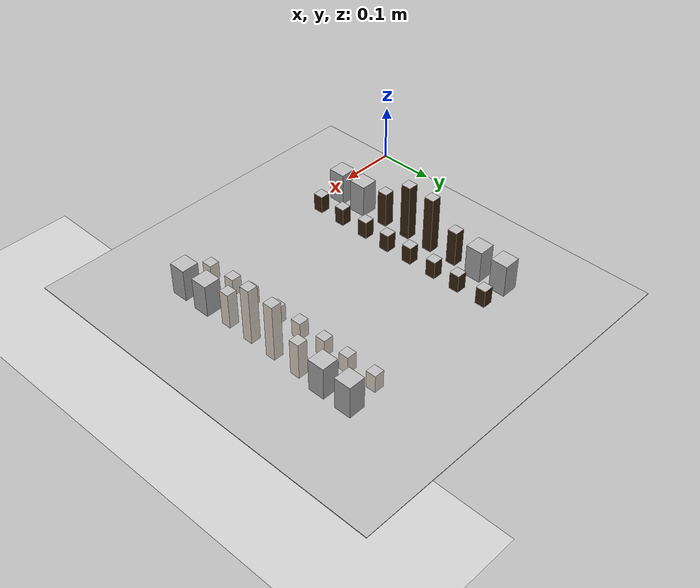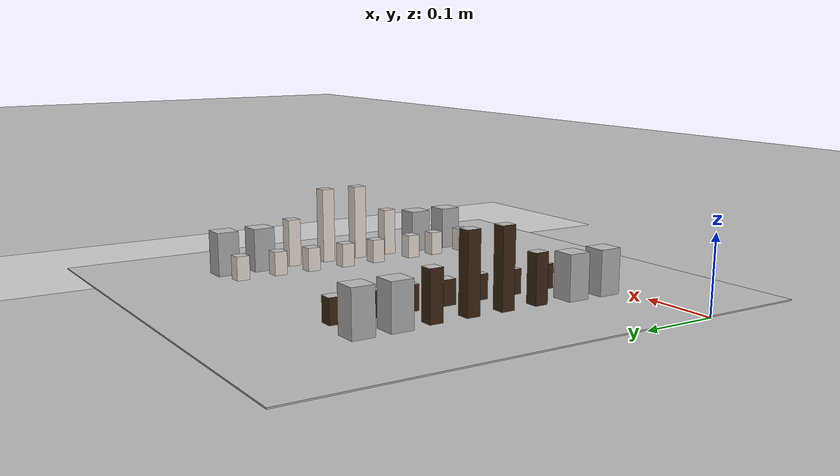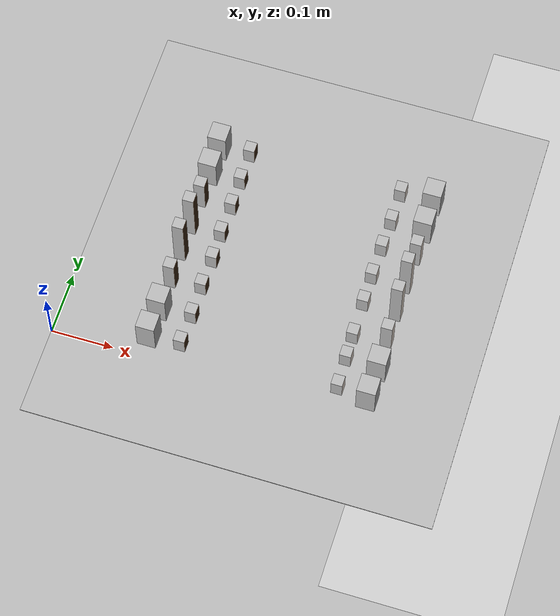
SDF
<sdf version="1.6">
 <world name="default">
  <light name="sun" type="directional">
   <pose>0 0 10 0 -0 0</pose>
   <diffuse>0.8 0.8 0.8 1</diffuse>
   <specular>0.2 0.2 0.2 1</specular>
   <attenuation>
    <range>1000</range>
    <constant>0.9</constant>
    <linear>0.01</linear>
    <quadratic>0.001</quadratic>
   </attenuation>
   <direction>-0.5 0.1 -0.9</direction>
  </light>
  <model name="ground_plane">
   <static>1</static>
   <link name="link">
    <collision name="collision">
     <geometry><plane><normal>0 0 1</normal><size>100 100</size></plane></geometry>
     <surface><friction><ode><mu>100</mu><mu2>50</mu2></ode></friction></surface>
    </collision>
    <visual name="visual">
     <cast_shadows>0</cast_shadows>
     <geometry><plane><normal>0 0 1</normal><size>100 100</size></plane></geometry>
     <material>
      <script><uri>file://media/materials/scripts/gazebo.material</uri><name>Gazebo/Grey</name></script>
     </material>
    </visual>
   </link>
  </model>
  <gravity>0 0 -9.8</gravity>
  <magnetic_field>6e-06 2.3e-05 -4.2e-05</magnetic_field>
  <atmosphere type="adiabatic"/>
  <physics name="default_physics" default="0" type="ode">
   <max_step_size>0.001</max_step_size>
   <real_time_factor>1</real_time_factor>
   <real_time_update_rate>1000</real_time_update_rate>
  </physics>
  <scene><ambient>0.4 0.4 0.4 1</ambient><background>0.7 0.7 0.7 1</background><shadows>1</shadows></scene>
  <spherical_coordinates>
   <surface_model>EARTH_WGS84</surface_model>
   <latitude_deg>0</latitude_deg>
   <longitude_deg>0</longitude_deg>
   <elevation>0</elevation>
   <heading_deg>0</heading_deg>
  </spherical_coordinates>
  <model name="flat_chessboard">
   <static>0</static>
   <link name="link">
    <inertial>
     <mass>0.05</mass>
     <inertia><ixx>1.5e-05</ixx><ixy>0</ixy><ixz>0</ixz><iyy>1.5e-05</iyy><iyz>0</iyz><izz>1.08e-05</izz></inertia>
    </inertial>
    <collision name="collision">
     <geometry><box><size>0.7 0.65 0.0039</size></box></geometry>
     <surface>
      <friction><ode><mu>30</mu><mu2>30</mu2><fdir1>0 0 0</fdir1></ode></friction>
      <contact><ode><kp>1e+06</kp><kd>100</kd><min_depth>0.0025</min_depth><max_vel>1</max_vel></ode></contact>
     </surface>
    </collision>
    <visual name="chessboard support"><geometry><box><size>0.7 0.65 0.0039</size></box></geometry></visual>
    <visual name="printed chessboard">
     <pose>0 0 0 0 -0 1.5708</pose>
     <geometry>
      <mesh><uri>model://flat_chessboard/meshes/flat_chessboard.dae</uri><scale>11.88 8.4 0.08</scale></mesh>
     </geometry>
    </visual>
    <velocity_decay><linear>0</linear><angular>0</angular></velocity_decay>
    <kinematic>1</kinematic>
   </link>
   <pose>0.32558 0.207819 -0.000478 -0.003572 2.3e-05 -1.57462</pose>
  </model>
  <model name="queenW">
   <static>0</static>
   <link name="link">
    <inertial>
     <mass>0.05</mass>
     <inertia><ixx>1.5e-05</ixx><ixy>0</ixy><ixz>0</ixz><iyy>1.5e-05</iyy><iyz>0</iyz><izz>1.08e-05</izz></inertia>
    </inertial>
    <collision name="colision">
     <geometry><box><size>0.03 0.03 0.08</size></box></geometry>
     <surface>
      <friction><ode><mu>30</mu><mu2>30</mu2><fdir1>0 0 0</fdir1></ode></friction>
      <contact><ode><kp>1000</kp><kd>100</kd><min_depth>0.001</min_depth><max_vel>0.001</max_vel></ode></contact>
     </surface>
    </collision>
    <visual name="visual1">
     <geometry><mesh><uri>model://queenW/meshes/queenW.dae</uri><scale>0.6 0.6 1.6</scale></mesh></geometry>
    </visual>
    <velocity_decay><linear>0</linear><angular>0</angular></velocity_decay>
   </link>
   <pose>0.501218 0.180881 0.039722 7e-05 0.003671 -0.000688</pose>
  </model>
  <model name="kingW">
   <static>0</static>
   <link name="link">
    <inertial>
     <mass>0.05</mass>
     <inertia><ixx>1.5e-05</ixx><ixy>0</ixy><ixz>0</ixz><iyy>1.5e-05</iyy><iyz>0</iyz><izz>1.08e-05</izz></inertia>
    </inertial>
    <collision name="colision">
     <geometry><box><size>0.03 0.03 0.08</size></box></geometry>
     <surface>
      <friction><ode><mu>30</mu><mu2>30</mu2><fdir1>0 0 0</fdir1></ode></friction>
      <contact><ode><kp>1000</kp><kd>100</kd><min_depth>0.001</min_depth><max_vel>0.001</max_vel></ode></contact>
     </surface>
    </collision>
    <visual name="visual1">
     <geometry><mesh><uri>model://kingW/meshes/kingW.dae</uri><scale>0.6 0.6 1.6</scale></mesh></geometry>
    </visual>
    <velocity_decay><linear>0</linear><angular>0</angular></velocity_decay>
   </link>
   <pose>0.502193 0.231458 0.03972 5.8e-05 0.003662 0</pose>
  </model>
  <model name="knightW1">
   <static>0</static>
   <link name="link">
    <inertial>
     <mass>0.05</mass>
     <inertia><ixx>1.5e-05</ixx><ixy>0</ixy><ixz>0</ixz><iyy>1.5e-05</iyy><iyz>0</iyz><izz>1.08e-05</izz></inertia>
    </inertial>
    <collision name="colision">
     <geometry><box><size>0.03 0.03 0.06</size></box></geometry>
     <surface>
      <friction><ode><mu>30</mu><mu2>30</mu2><fdir1>0 0 0</fdir1></ode></friction>
      <contact><ode><kp>1000</kp><kd>100</kd><min_depth>0.001</min_depth><max_vel>0.001</max_vel></ode></contact>
     </surface>
    </collision>
    <visual name="visual1">
     <geometry><mesh><uri>model://knightW1/meshes/knightW1.dae</uri><scale>0.6 0.6 1.2</scale></mesh></geometry>
    </visual>
    <velocity_decay><linear>0</linear><angular>0</angular></velocity_decay>
   </link>
   <pose>0.500443 0.131834 0.029722 4.1e-05 0.003633 0</pose>
  </model>
  <model name="knightW2">
   <static>0</static>
   <link name="link">
    <inertial>
     <mass>0.05</mass>
     <inertia><ixx>1.5e-05</ixx><ixy>0</ixy><ixz>0</ixz><iyy>1.5e-05</iyy><iyz>0</iyz><izz>1.08e-05</izz></inertia>
    </inertial>
    <collision name="colision">
     <geometry><box><size>0.03 0.03 0.06</size></box></geometry>
     <surface>
      <friction><ode><mu>30</mu><mu2>30</mu2><fdir1>0 0 0</fdir1></ode></friction>
      <contact><ode><kp>1000</kp><kd>100</kd><min_depth>0.001</min_depth><max_vel>0.001</max_vel></ode></contact>
     </surface>
    </collision>
    <visual name="visual1">
     <geometry><mesh><uri>model://knightW2/meshes/knightW2.dae</uri><scale>0.6 0.6 1.2</scale></mesh></geometry>
    </visual>
    <velocity_decay><linear>0</linear><angular>0</angular></velocity_decay>
   </link>
   <pose>0.503465 0.284436 0.029717 4.1e-05 0.003633 0</pose>
  </model>
  <model name="horseW1">
   <static>0</static>
   <link name="link">
    <inertial>
     <mass>0.05</mass>
     <inertia><ixx>1.5e-05</ixx><ixy>0</ixy><ixz>0</ixz><iyy>1.5e-05</iyy><iyz>0</iyz><izz>1.08e-05</izz></inertia>
    </inertial>
    <collision name="colision">
     <geometry><box><size>0.03 0.03 0.06</size></box></geometry>
     <surface>
      <friction><ode><mu>30</mu><mu2>30</mu2><fdir1>0 0 0</fdir1></ode></friction>
      <contact><ode><kp>1000</kp><kd>100</kd><min_depth>0.001</min_depth><max_vel>0.001</max_vel></ode></contact>
     </surface>
    </collision>
    <visual name="visual1">
     <geometry><mesh><uri>model://horseW1/meshes/horseW1.dae</uri><scale>0.6 0.6 1.2</scale></mesh></geometry>
    </visual>
    <velocity_decay><linear>0</linear><angular>0</angular></velocity_decay>
   </link>
   <pose>0.500951 0.081192 0.029719 4.1e-05 0.003633 1e-06</pose>
  </model>
  <model name="horseW2">
   <static>0</static>
   <link name="link">
    <inertial>
     <mass>0.05</mass>
     <inertia><ixx>1.5e-05</ixx><ixy>0</ixy><ixz>0</ixz><iyy>1.5e-05</iyy><iyz>0</iyz><izz>1.08e-05</izz></inertia>
    </inertial>
    <collision name="colision">
     <geometry><box><size>0.03 0.03 0.06</size></box></geometry>
     <surface>
      <friction><ode><mu>30</mu><mu2>30</mu2><fdir1>0 0 0</fdir1></ode></friction>
      <contact><ode><kp>1000</kp><kd>100</kd><min_depth>0.001</min_depth><max_vel>0.001</max_vel></ode></contact>
     </surface>
    </collision>
    <visual name="visual1">
     <geometry><mesh><uri>model://horseW2/meshes/horseW2.dae</uri><scale>0.6 0.6 1.2</scale></mesh></geometry>
    </visual>
    <velocity_decay><linear>0</linear><angular>0</angular></velocity_decay>
   </link>
   <pose>0.502801 0.333377 0.029721 4.1e-05 0.003633 1e-06</pose>
  </model>
  <model name="towerW1">
   <static>0</static>
   <link name="link">
    <inertial>
     <mass>0.05</mass>
     <inertia><ixx>1.5e-05</ixx><ixy>0</ixy><ixz>0</ixz><iyy>1.5e-05</iyy><iyz>0</iyz><izz>1.08e-05</izz></inertia>
    </inertial>
    <collision name="colision">
     <geometry><box><size>0.03 0.03 0.06</size></box></geometry>
     <surface>
      <friction><ode><mu>30</mu><mu2>30</mu2><fdir1>0 0 0</fdir1></ode></friction>
      <contact><ode><kp>1000</kp><kd>100</kd><min_depth>0.001</min_depth><max_vel>0.001</max_vel></ode></contact>
     </surface>
    </collision>
    <visual name="visual1">
     <geometry><mesh><uri>model://towerW1/meshes/towerW1.dae</uri><scale>0.6 0.6 1.2</scale></mesh></geometry>
    </visual>
    <velocity_decay><linear>0</linear><angular>0</angular></velocity_decay>
   </link>
   <pose>0.499592 0.028987 0.029722 3.9e-05 0.00363 1e-06</pose>
  </model>
  <model name="towerW2">
   <static>0</static>
   <link name="link">
    <inertial>
     <mass>0.05</mass>
     <inertia><ixx>1.5e-05</ixx><ixy>0</ixy><ixz>0</ixz><iyy>1.5e-05</iyy><iyz>0</iyz><izz>1.08e-05</izz></inertia>
    </inertial>
    <collision name="colision">
     <geometry><box><size>0.03 0.03 0.06</size></box></geometry>
     <surface>
      <friction><ode><mu>30</mu><mu2>30</mu2><fdir1>0 0 0</fdir1></ode></friction>
      <contact><ode><kp>1000</kp><kd>100</kd><min_depth>0.001</min_depth><max_vel>0.001</max_vel></ode></contact>
     </surface>
    </collision>
    <visual name="visual1">
     <geometry><mesh><uri>model://towerW2/meshes/towerW2.dae</uri><scale>0.6 0.6 1.2</scale></mesh></geometry>
    </visual>
    <velocity_decay><linear>0</linear><angular>0</angular></velocity_decay>
   </link>
   <pose>0.503264 0.385638 0.029722 3.9e-05 0.00363 1e-06</pose>
  </model>
  <model name="pawnW1">
   <static>0</static>
   <link name="link">
    <inertial>
     <mass>0.05</mass>
     <inertia><ixx>1.5e-05</ixx><ixy>0</ixy><ixz>0</ixz><iyy>1.5e-05</iyy><iyz>0</iyz><izz>1.08e-05</izz></inertia>
    </inertial>
    <collision name="colision">
     <geometry><box><size>0.03 0.03 0.04</size></box></geometry>
     <surface>
      <friction><ode><mu>30</mu><mu2>30</mu2><fdir1>0 0 0</fdir1></ode></friction>
      <contact><ode><kp>1000</kp><kd>100</kd><min_depth>0.001</min_depth><max_vel>0.001</max_vel></ode></contact>
     </surface>
    </collision>
    <visual name="visual1">
     <geometry><mesh><uri>model://pawnW1/meshes/pawnW1.dae</uri><scale>0.6 0.6 0.8</scale></mesh></geometry>
    </visual>
    <velocity_decay><linear>0</linear><angular>0</angular></velocity_decay>
   </link>
   <pose>0.451006 0.033199 0.019895 3.9e-05 0.003612 -1e-06</pose>
  </model>
  <model name="pawnW2">
   <static>0</static>
   <link name="link">
    <inertial>
     <mass>0.018</mass>
     <inertia><ixx>1.5e-05</ixx><ixy>0</ixy><ixz>0</ixz><iyy>1.5e-05</iyy><iyz>0</iyz><izz>1.08e-05</izz></inertia>
    </inertial>
    <collision name="colision">
     <geometry><box><size>0.03 0.03 0.04</size></box></geometry>
     <surface>
      <friction><ode><mu>30</mu><mu2>30</mu2><fdir1>0 0 0</fdir1></ode></friction>
      <contact><ode><kp>1000</kp><kd>100</kd><min_depth>0.001</min_depth><max_vel>0.001</max_vel></ode></contact>
     </surface>
    </collision>
    <visual name="visual1">
     <geometry><mesh><uri>model://pawnW2/meshes/pawnW2.dae</uri><scale>0.6 0.6 0.8</scale></mesh></geometry>
    </visual>
    <velocity_decay><linear>0</linear><angular>0</angular></velocity_decay>
   </link>
   <pose>0.449628 0.083276 0.01998 3.7e-05 0.003586 0</pose>
  </model>
  <model name="pawnW3">
   <static>0</static>
   <link name="link">
    <inertial>
     <mass>0.05</mass>
     <inertia><ixx>1.5e-05</ixx><ixy>0</ixy><ixz>0</ixz><iyy>1.5e-05</iyy><iyz>0</iyz><izz>1.08e-05</izz></inertia>
    </inertial>
    <collision name="colision">
     <geometry><box><size>0.03 0.03 0.04</size></box></geometry>
     <surface>
      <friction><ode><mu>30</mu><mu2>30</mu2><fdir1>0 0 0</fdir1></ode></friction>
      <contact><ode><kp>1000</kp><kd>100</kd><min_depth>0.001</min_depth><max_vel>0.001</max_vel></ode></contact>
     </surface>
    </collision>
    <visual name="visual1">
     <geometry><mesh><uri>model://pawnW3/meshes/pawnW3.dae</uri><scale>0.6 0.6 0.8</scale></mesh></geometry>
    </visual>
    <velocity_decay><linear>0</linear><angular>0</angular></velocity_decay>
   </link>
   <pose>0.448812 0.123178 0.019906 4e-05 0.003613 0</pose>
  </model>
  <model name="pawnW4">
   <static>0</static>
   <link name="link">
    <inertial>
     <mass>0.05</mass>
     <inertia><ixx>1.5e-05</ixx><ixy>0</ixy><ixz>0</ixz><iyy>1.5e-05</iyy><iyz>0</iyz><izz>1.08e-05</izz></inertia>
    </inertial>
    <collision name="colision">
     <geometry><box><size>0.03 0.03 0.04</size></box></geometry>
     <surface>
      <friction><ode><mu>30</mu><mu2>30</mu2><fdir1>0 0 0</fdir1></ode></friction>
      <contact><ode><kp>1000</kp><kd>100</kd><min_depth>0.001</min_depth><max_vel>0.001</max_vel></ode></contact>
     </surface>
    </collision>
    <visual name="visual1">
     <geometry><mesh><uri>model://pawnW4/meshes/pawnW4.dae</uri><scale>0.6 0.6 0.8</scale></mesh></geometry>
    </visual>
    <velocity_decay><linear>0</linear><angular>0</angular></velocity_decay>
   </link>
   <pose>0.448292 0.181907 0.01991 4e-05 0.003613 -1e-06</pose>
  </model>
  <model name="pawnW5">
   <static>0</static>
   <link name="link">
    <inertial>
     <mass>0.05</mass>
     <inertia><ixx>1.5e-05</ixx><ixy>0</ixy><ixz>0</ixz><iyy>1.5e-05</iyy><iyz>0</iyz><izz>1.08e-05</izz></inertia>
    </inertial>
    <collision name="colision">
     <geometry><box><size>0.03 0.03 0.04</size></box></geometry>
     <surface>
      <friction><ode><mu>30</mu><mu2>30</mu2><fdir1>0 0 0</fdir1></ode></friction>
      <contact><ode><kp>1000</kp><kd>100</kd><min_depth>0.001</min_depth><max_vel>0.001</max_vel></ode></contact>
     </surface>
    </collision>
    <visual name="visual1">
     <geometry><mesh><uri>model://pawnW5/meshes/pawnW5.dae</uri><scale>0.6 0.6 0.8</scale></mesh></geometry>
    </visual>
    <velocity_decay><linear>0</linear><angular>0</angular></velocity_decay>
   </link>
   <pose>0.447856 0.230775 0.019914 4e-05 0.003613 -1e-06</pose>
  </model>
  <model name="pawnW6">
   <static>0</static>
   <link name="link">
    <inertial>
     <mass>0.05</mass>
     <inertia><ixx>1.5e-05</ixx><ixy>0</ixy><ixz>0</ixz><iyy>1.5e-05</iyy><iyz>0</iyz><izz>1.08e-05</izz></inertia>
    </inertial>
    <collision name="colision">
     <geometry><box><size>0.03 0.03 0.04</size></box></geometry>
     <surface>
      <friction><ode><mu>30</mu><mu2>30</mu2><fdir1>0 0 0</fdir1></ode></friction>
      <contact><ode><kp>1000</kp><kd>100</kd><min_depth>0.001</min_depth><max_vel>0.001</max_vel></ode></contact>
     </surface>
    </collision>
    <visual name="visual1">
     <geometry><mesh><uri>model://pawnW6/meshes/pawnW6.dae</uri><scale>0.6 0.6 0.8</scale></mesh></geometry>
    </visual>
    <velocity_decay><linear>0</linear><angular>0</angular></velocity_decay>
   </link>
   <pose>0.448862 0.282782 0.019912 4e-05 0.003613 -1e-06</pose>
  </model>
  <model name="pawnW7">
   <static>0</static>
   <link name="link">
    <inertial>
     <mass>0.05</mass>
     <inertia><ixx>1.5e-05</ixx><ixy>0</ixy><ixz>0</ixz><iyy>1.5e-05</iyy><iyz>0</iyz><izz>1.08e-05</izz></inertia>
    </inertial>
    <collision name="colision">
     <geometry><box><size>0.03 0.03 0.04</size></box></geometry>
     <surface>
      <friction><ode><mu>30</mu><mu2>30</mu2><fdir1>0 0 0</fdir1></ode></friction>
      <contact><ode><kp>1000</kp><kd>100</kd><min_depth>0.001</min_depth><max_vel>0.001</max_vel></ode></contact>
     </surface>
    </collision>
    <visual name="visual1">
     <geometry><mesh><uri>model://pawnW7/meshes/pawnW7.dae</uri><scale>0.6 0.6 0.8</scale></mesh></geometry>
    </visual>
    <velocity_decay><linear>0</linear><angular>0</angular></velocity_decay>
   </link>
   <pose>0.45054 0.331521 0.019908 4e-05 0.003613 -1e-06</pose>
  </model>
  <model name="pawnW8">
   <static>0</static>
   <link name="link">
    <inertial>
     <mass>0.05</mass>
     <inertia><ixx>1.5e-05</ixx><ixy>0</ixy><ixz>0</ixz><iyy>1.5e-05</iyy><iyz>0</iyz><izz>1.08e-05</izz></inertia>
    </inertial>
    <collision name="colision">
     <geometry><box><size>0.03 0.03 0.04</size></box></geometry>
     <surface>
      <friction><ode><mu>30</mu><mu2>30</mu2><fdir1>0 0 0</fdir1></ode></friction>
      <contact><ode><kp>1000</kp><kd>100</kd><min_depth>0.001</min_depth><max_vel>0.001</max_vel></ode></contact>
     </surface>
    </collision>
    <visual name="visual1">
     <geometry><mesh><uri>model://pawnW8/meshes/pawnW8.dae</uri><scale>0.6 0.6 0.8</scale></mesh></geometry>
    </visual>
    <velocity_decay><linear>0</linear><angular>0</angular></velocity_decay>
   </link>
   <pose>0.45061 0.385643 0.01991 4e-05 0.003613 -1e-06</pose>
  </model>
  <model name="kingB">
   <static>0</static>
   <link name="link">
    <inertial>
     <mass>0.05</mass>
     <inertia><ixx>1.5e-05</ixx><ixy>0</ixy><ixz>0</ixz><iyy>1.5e-05</iyy><iyz>0</iyz><izz>1.08e-05</izz></inertia>
    </inertial>
    <collision name="colision">
     <geometry><box><size>0.03 0.03 0.08</size></box></geometry>
     <surface>
      <friction><ode><mu>30</mu><mu2>30</mu2><fdir1>0 0 0</fdir1></ode></friction>
      <contact><ode><kp>1000</kp><kd>100</kd><min_depth>0.001</min_depth><max_vel>0.001</max_vel></ode></contact>
     </surface>
    </collision>
    <visual name="visual1">
     <geometry><mesh><uri>model://kingB/meshes/kingB.dae</uri><scale>0.6 0.6 1.6</scale></mesh></geometry>
    </visual>
    <velocity_decay><linear>0</linear><angular>0</angular></velocity_decay>
   </link>
   <pose>0.150134 0.184388 0.040976 3.7e-05 0.003651 -0.000104</pose>
  </model>
  <model name="queenB">
   <static>0</static>
   <link name="link">
    <inertial>
     <mass>0.05</mass>
     <inertia><ixx>1.5e-05</ixx><ixy>0</ixy><ixz>0</ixz><iyy>1.5e-05</iyy><iyz>0</iyz><izz>1.08e-05</izz></inertia>
    </inertial>
    <collision name="colision">
     <geometry><box><size>0.03 0.03 0.08</size></box></geometry>
     <surface>
      <friction><ode><mu>30</mu><mu2>30</mu2><fdir1>0 0 0</fdir1></ode></friction>
      <contact><ode><kp>1000</kp><kd>100</kd><min_depth>0.001</min_depth><max_vel>0.001</max_vel></ode></contact>
     </surface>
    </collision>
    <visual name="visual1">
     <geometry><mesh><uri>model://queenB/meshes/queenB.dae</uri><scale>0.6 0.6 1.6</scale></mesh></geometry>
    </visual>
    <velocity_decay><linear>0</linear><angular>0</angular></velocity_decay>
   </link>
   <pose>0.150668 0.233789 0.040975 3.8e-05 0.003651 -3e-06</pose>
  </model>
  <model name="knightB1">
   <static>0</static>
   <link name="link">
    <inertial>
     <mass>0.05</mass>
     <inertia><ixx>1.5e-05</ixx><ixy>0</ixy><ixz>0</ixz><iyy>1.5e-05</iyy><iyz>0</iyz><izz>1.08e-05</izz></inertia>
    </inertial>
    <collision name="colision">
     <geometry><box><size>0.03 0.03 0.06</size></box></geometry>
     <surface>
      <friction><ode><mu>30</mu><mu2>30</mu2><fdir1>0 0 0</fdir1></ode></friction>
      <contact><ode><kp>1000</kp><kd>100</kd><min_depth>0.001</min_depth><max_vel>0.001</max_vel></ode></contact>
     </surface>
    </collision>
    <visual name="visual1">
     <geometry><mesh><uri>model://knightB1/meshes/knightB1.dae</uri><scale>0.6 0.6 1.2</scale></mesh></geometry>
    </visual>
    <velocity_decay><linear>0</linear><angular>0</angular></velocity_decay>
   </link>
   <pose>0.150466 0.133964 0.030972 3.7e-05 0.003631 -0</pose>
  </model>
  <model name="knightB2">
   <static>0</static>
   <link name="link">
    <inertial>
     <mass>0.05</mass>
     <inertia><ixx>1.5e-05</ixx><ixy>0</ixy><ixz>0</ixz><iyy>1.5e-05</iyy><iyz>0</iyz><izz>1.08e-05</izz></inertia>
    </inertial>
    <collision name="colision">
     <geometry><box><size>0.03 0.03 0.06</size></box></geometry>
     <surface>
      <friction><ode><mu>30</mu><mu2>30</mu2><fdir1>0 0 0</fdir1></ode></friction>
      <contact><ode><kp>1000</kp><kd>100</kd><min_depth>0.001</min_depth><max_vel>0.001</max_vel></ode></contact>
     </surface>
    </collision>
    <visual name="visual1">
     <geometry><mesh><uri>model://knightB2/meshes/knightB2.dae</uri><scale>0.6 0.6 1.2</scale></mesh></geometry>
    </visual>
    <velocity_decay><linear>0</linear><angular>0</angular></velocity_decay>
   </link>
   <pose>0.1506 0.284789 0.030977 3.7e-05 0.003631 1e-06</pose>
  </model>
  <model name="horseB1">
   <static>0</static>
   <link name="link">
    <inertial>
     <mass>0.05</mass>
     <inertia><ixx>1.5e-05</ixx><ixy>0</ixy><ixz>0</ixz><iyy>1.5e-05</iyy><iyz>0</iyz><izz>1.08e-05</izz></inertia>
    </inertial>
    <collision name="colision">
     <geometry><box><size>0.03 0.03 0.06</size></box></geometry>
     <surface>
      <friction><ode><mu>30</mu><mu2>30</mu2><fdir1>0 0 0</fdir1></ode></friction>
      <contact><ode><kp>1000</kp><kd>100</kd><min_depth>0.001</min_depth><max_vel>0.001</max_vel></ode></contact>
     </surface>
    </collision>
    <visual name="visual1">
     <geometry><mesh><uri>model://horseB1/meshes/horseB1.dae</uri><scale>0.6 0.6 1.2</scale></mesh></geometry>
    </visual>
    <velocity_decay><linear>0</linear><angular>0</angular></velocity_decay>
   </link>
   <pose>0.149084 0.081567 0.030975 3.7e-05 0.003631 1e-06</pose>
  </model>
  <model name="horseB2">
   <static>0</static>
   <link name="link">
    <inertial>
     <mass>0.05</mass>
     <inertia><ixx>1.5e-05</ixx><ixy>0</ixy><ixz>0</ixz><iyy>1.5e-05</iyy><iyz>0</iyz><izz>1.08e-05</izz></inertia>
    </inertial>
    <collision name="colision">
     <geometry><box><size>0.03 0.03 0.06</size></box></geometry>
     <surface>
      <friction><ode><mu>30</mu><mu2>30</mu2><fdir1>0 0 0</fdir1></ode></friction>
      <contact><ode><kp>1000</kp><kd>100</kd><min_depth>0.001</min_depth><max_vel>0.001</max_vel></ode></contact>
     </surface>
    </collision>
    <visual name="visual1">
     <geometry><mesh><uri>model://horseB2/meshes/horseB2.dae</uri><scale>0.6 0.6 1.2</scale></mesh></geometry>
    </visual>
    <velocity_decay><linear>0</linear><angular>0</angular></velocity_decay>
   </link>
   <pose>0.149691 0.333837 0.030983 3.7e-05 0.003631 1e-06</pose>
  </model>
  <model name="towerB1">
   <static>0</static>
   <link name="link">
    <inertial>
     <mass>0.05</mass>
     <inertia><ixx>1.5e-05</ixx><ixy>0</ixy><ixz>0</ixz><iyy>1.5e-05</iyy><iyz>0</iyz><izz>1.08e-05</izz></inertia>
    </inertial>
    <collision name="colision">
     <geometry><box><size>0.03 0.03 0.06</size></box></geometry>
     <surface>
      <friction><ode><mu>30</mu><mu2>30</mu2><fdir1>0 0 0</fdir1></ode></friction>
      <contact><ode><kp>1000</kp><kd>100</kd><min_depth>0.001</min_depth><max_vel>0.001</max_vel></ode></contact>
     </surface>
    </collision>
    <visual name="visual1">
     <geometry><mesh><uri>model://towerB1/meshes/towerB1.dae</uri><scale>0.6 0.6 1.2</scale></mesh></geometry>
    </visual>
    <velocity_decay><linear>0</linear><angular>0</angular></velocity_decay>
   </link>
   <pose>0.148261 0.032559 0.030977 3.7e-05 0.003631 1e-06</pose>
  </model>
  <model name="towerB2">
   <static>0</static>
   <link name="link">
    <inertial>
     <mass>0.05</mass>
     <inertia><ixx>1.5e-05</ixx><ixy>0</ixy><ixz>0</ixz><iyy>1.5e-05</iyy><iyz>0</iyz><izz>1.08e-05</izz></inertia>
    </inertial>
    <collision name="colision">
     <geometry><box><size>0.03 0.03 0.06</size></box></geometry>
     <surface>
      <friction><ode><mu>30</mu><mu2>30</mu2><fdir1>0 0 0</fdir1></ode></friction>
      <contact><ode><kp>1000</kp><kd>100</kd><min_depth>0.001</min_depth><max_vel>0.001</max_vel></ode></contact>
     </surface>
    </collision>
    <visual name="visual1">
     <geometry><mesh><uri>model://towerB2/meshes/towerB2.dae</uri><scale>0.6 0.6 1.2</scale></mesh></geometry>
    </visual>
    <velocity_decay><linear>0</linear><angular>0</angular></velocity_decay>
   </link>
   <pose>0.149693 0.383126 0.030984 3.7e-05 0.003631 1e-06</pose>
  </model>
  <model name="pawnB1">
   <static>0</static>
   <link name="link">
    <inertial>
     <mass>0.05</mass>
     <inertia><ixx>1.5e-05</ixx><ixy>0</ixy><ixz>0</ixz><iyy>1.5e-05</iyy><iyz>0</iyz><izz>1.08e-05</izz></inertia>
    </inertial>
    <collision name="colision">
     <geometry><box><size>0.03 0.03 0.04</size></box></geometry>
     <surface>
      <friction><ode><mu>30</mu><mu2>30</mu2><fdir1>0 0 0</fdir1></ode></friction>
      <contact><ode><kp>1000</kp><kd>100</kd><min_depth>0.001</min_depth><max_vel>0.001</max_vel></ode></contact>
     </surface>
    </collision>
    <visual name="visual1">
     <geometry><mesh><uri>model://pawnB1/meshes/pawnB1.dae</uri><scale>0.6 0.6 0.8</scale></mesh></geometry>
    </visual>
    <velocity_decay><linear>0</linear><angular>0</angular></velocity_decay>
   </link>
   <pose>0.199904 0.032381 0.020792 3.7e-05 0.003611 -1e-06</pose>
  </model>
  <model name="pawnB2">
   <static>0</static>
   <link name="link">
    <inertial>
     <mass>0.018</mass>
     <inertia><ixx>1.5e-05</ixx><ixy>0</ixy><ixz>0</ixz><iyy>1.5e-05</iyy><iyz>0</iyz><izz>1.08e-05</izz></inertia>
    </inertial>
    <collision name="colision">
     <geometry><box><size>0.03 0.03 0.04</size></box></geometry>
     <surface>
      <friction><ode><mu>30</mu><mu2>30</mu2><fdir1>0 0 0</fdir1></ode></friction>
      <contact><ode><kp>1000</kp><kd>100</kd><min_depth>0.001</min_depth><max_vel>0.001</max_vel></ode></contact>
     </surface>
    </collision>
    <visual name="visual1">
     <geometry><mesh><uri>model://pawnB2/meshes/pawnB2.dae</uri><scale>0.6 0.6 0.8</scale></mesh></geometry>
    </visual>
    <velocity_decay><linear>0</linear><angular>0</angular></velocity_decay>
   </link>
   <pose>0.200998 0.083195 0.020868 3.7e-05 0.003586 -5.9e-05</pose>
  </model>
  <model name="pawnB3">
   <static>0</static>
   <link name="link">
    <inertial>
     <mass>0.05</mass>
     <inertia><ixx>1.5e-05</ixx><ixy>0</ixy><ixz>0</ixz><iyy>1.5e-05</iyy><iyz>0</iyz><izz>1.08e-05</izz></inertia>
    </inertial>
    <collision name="colision">
     <geometry><box><size>0.03 0.03 0.04</size></box></geometry>
     <surface>
      <friction><ode><mu>30</mu><mu2>30</mu2><fdir1>0 0 0</fdir1></ode></friction>
      <contact><ode><kp>1000</kp><kd>100</kd><min_depth>0.001</min_depth><max_vel>0.001</max_vel></ode></contact>
     </surface>
    </collision>
    <visual name="visual1">
     <geometry><mesh><uri>model://pawnB3/meshes/pawnB3.dae</uri><scale>0.6 0.6 0.8</scale></mesh></geometry>
    </visual>
    <velocity_decay><linear>0</linear><angular>0</angular></velocity_decay>
   </link>
   <pose>0.200264 0.135198 0.020795 3.7e-05 0.003611 -2.9e-05</pose>
  </model>
  <model name="pawnB4">
   <static>0</static>
   <link name="link">
    <inertial>
     <mass>0.05</mass>
     <inertia><ixx>1.5e-05</ixx><ixy>0</ixy><ixz>0</ixz><iyy>1.5e-05</iyy><iyz>0</iyz><izz>1.08e-05</izz></inertia>
    </inertial>
    <collision name="colision">
     <geometry><box><size>0.03 0.03 0.04</size></box></geometry>
     <surface>
      <friction><ode><mu>30</mu><mu2>30</mu2><fdir1>0 0 0</fdir1></ode></friction>
      <contact><ode><kp>1000</kp><kd>100</kd><min_depth>0.001</min_depth><max_vel>0.001</max_vel></ode></contact>
     </surface>
    </collision>
    <visual name="visual1">
     <geometry><mesh><uri>model://pawnB4/meshes/pawnB4.dae</uri><scale>0.6 0.6 0.8</scale></mesh></geometry>
    </visual>
    <velocity_decay><linear>0</linear><angular>0</angular></velocity_decay>
   </link>
   <pose>0.201555 0.185073 0.020792 3.7e-05 0.003611 -1e-06</pose>
  </model>
  <model name="pawnB5">
   <static>0</static>
   <link name="link">
    <inertial>
     <mass>0.05</mass>
     <inertia><ixx>1.5e-05</ixx><ixy>0</ixy><ixz>0</ixz><iyy>1.5e-05</iyy><iyz>0</iyz><izz>1.08e-05</izz></inertia>
    </inertial>
    <collision name="colision">
     <geometry><box><size>0.03 0.03 0.04</size></box></geometry>
     <surface>
      <friction><ode><mu>30</mu><mu2>30</mu2><fdir1>0 0 0</fdir1></ode></friction>
      <contact><ode><kp>1000</kp><kd>100</kd><min_depth>0.001</min_depth><max_vel>0.001</max_vel></ode></contact>
     </surface>
    </collision>
    <visual name="visual1">
     <geometry><mesh><uri>model://pawnB5/meshes/pawnB5.dae</uri><scale>0.6 0.6 0.8</scale></mesh></geometry>
    </visual>
    <velocity_decay><linear>0</linear><angular>0</angular></velocity_decay>
   </link>
   <pose>0.200321 0.232684 0.020798 3.7e-05 0.003611 -1e-06</pose>
  </model>
  <model name="pawnB6">
   <static>0</static>
   <link name="link">
    <inertial>
     <mass>0.05</mass>
     <inertia><ixx>1.5e-05</ixx><ixy>0</ixy><ixz>0</ixz><iyy>1.5e-05</iyy><iyz>0</iyz><izz>1.08e-05</izz></inertia>
    </inertial>
    <collision name="colision">
     <geometry><box><size>0.03 0.03 0.04</size></box></geometry>
     <surface>
      <friction><ode><mu>30</mu><mu2>30</mu2><fdir1>0 0 0</fdir1></ode></friction>
      <contact><ode><kp>1000</kp><kd>100</kd><min_depth>0.001</min_depth><max_vel>0.001</max_vel></ode></contact>
     </surface>
    </collision>
    <visual name="visual1">
     <geometry><mesh><uri>model://pawnB6/meshes/pawnB6.dae</uri><scale>0.6 0.6 0.8</scale></mesh></geometry>
    </visual>
    <velocity_decay><linear>0</linear><angular>0</angular></velocity_decay>
   </link>
   <pose>0.201148 0.284311 0.020797 3.7e-05 0.003611 -1e-06</pose>
  </model>
  <model name="pawnB7">
   <static>0</static>
   <link name="link">
    <inertial>
     <mass>0.05</mass>
     <inertia><ixx>1.5e-05</ixx><ixy>0</ixy><ixz>0</ixz><iyy>1.5e-05</iyy><iyz>0</iyz><izz>1.08e-05</izz></inertia>
    </inertial>
    <collision name="colision">
     <geometry><box><size>0.03 0.03 0.04</size></box></geometry>
     <surface>
      <friction><ode><mu>30</mu><mu2>30</mu2><fdir1>0 0 0</fdir1></ode></friction>
      <contact><ode><kp>1000</kp><kd>100</kd><min_depth>0.001</min_depth><max_vel>0.001</max_vel></ode></contact>
     </surface>
    </collision>
    <visual name="visual1">
     <geometry><mesh><uri>model://pawnB7/meshes/pawnB7.dae</uri><scale>0.6 0.6 0.8</scale></mesh></geometry>
    </visual>
    <velocity_decay><linear>0</linear><angular>0</angular></velocity_decay>
   </link>
   <pose>0.2009 0.332791 0.0208 3.7e-05 0.003611 -1e-06</pose>
  </model>
  <model name="pawnB8">
   <static>0</static>
   <link name="link">
    <inertial>
     <mass>0.05</mass>
     <inertia><ixx>1.5e-05</ixx><ixy>0</ixy><ixz>0</ixz><iyy>1.5e-05</iyy><iyz>0</iyz><izz>1.08e-05</izz></inertia>
    </inertial>
    <collision name="colision">
     <geometry><box><size>0.03 0.03 0.04</size></box></geometry>
     <surface>
      <friction><ode><mu>30</mu><mu2>30</mu2><fdir1>0 0 0</fdir1></ode></friction>
      <contact><ode><kp>1000</kp><kd>100</kd><min_depth>0.001</min_depth><max_vel>0.001</max_vel></ode></contact>
     </surface>
    </collision>
    <visual name="visual1">
     <geometry><mesh><uri>model://pawnB8/meshes/pawnB8.dae</uri><scale>0.6 0.6 0.8</scale></mesh></geometry>
    </visual>
    <velocity_decay><linear>0</linear><angular>0</angular></velocity_decay>
   </link>
   <pose>0.200466 0.385053 0.020803 3.7e-05 0.003611 -1e-06</pose>
  </model>
 </world>
</sdf>
